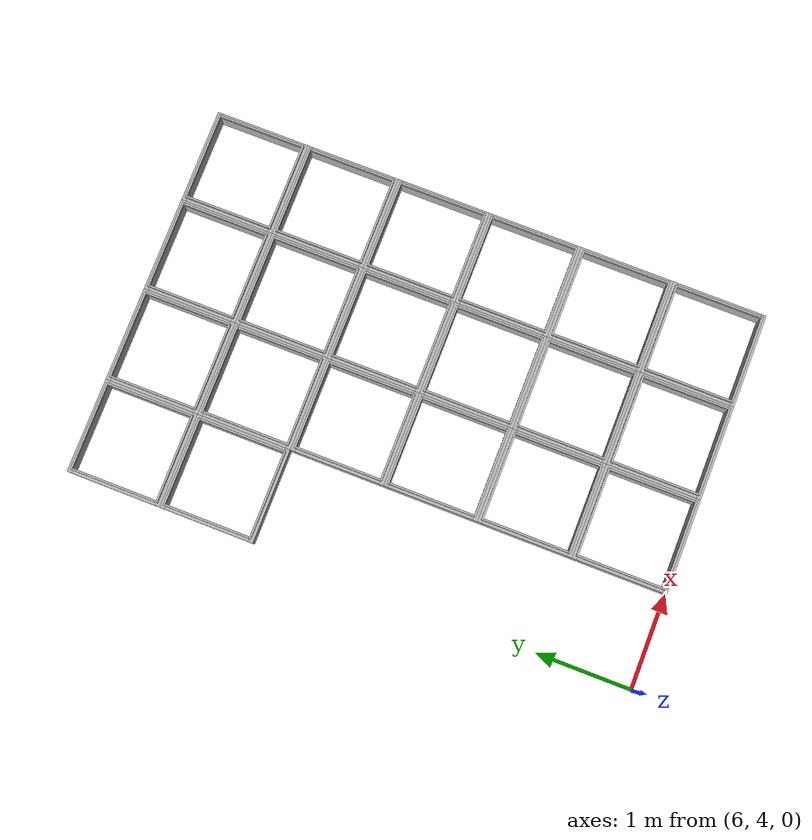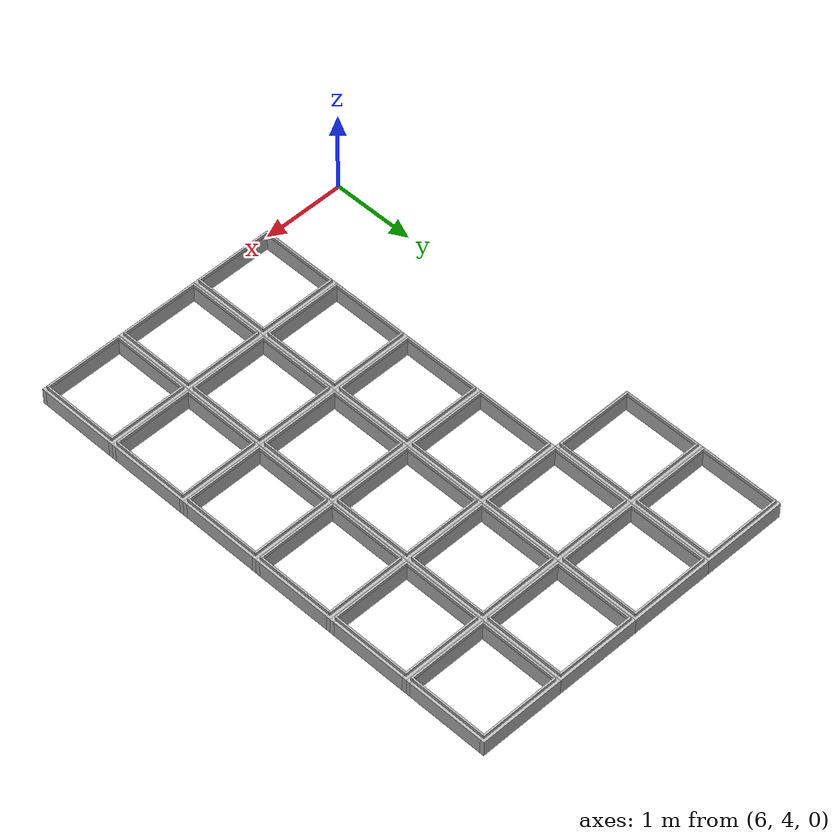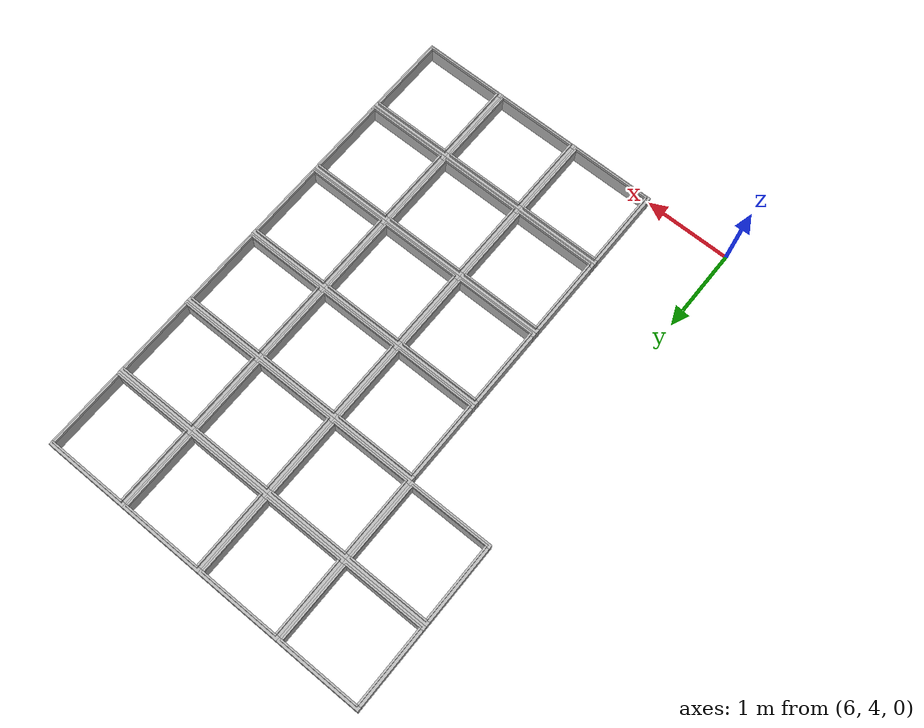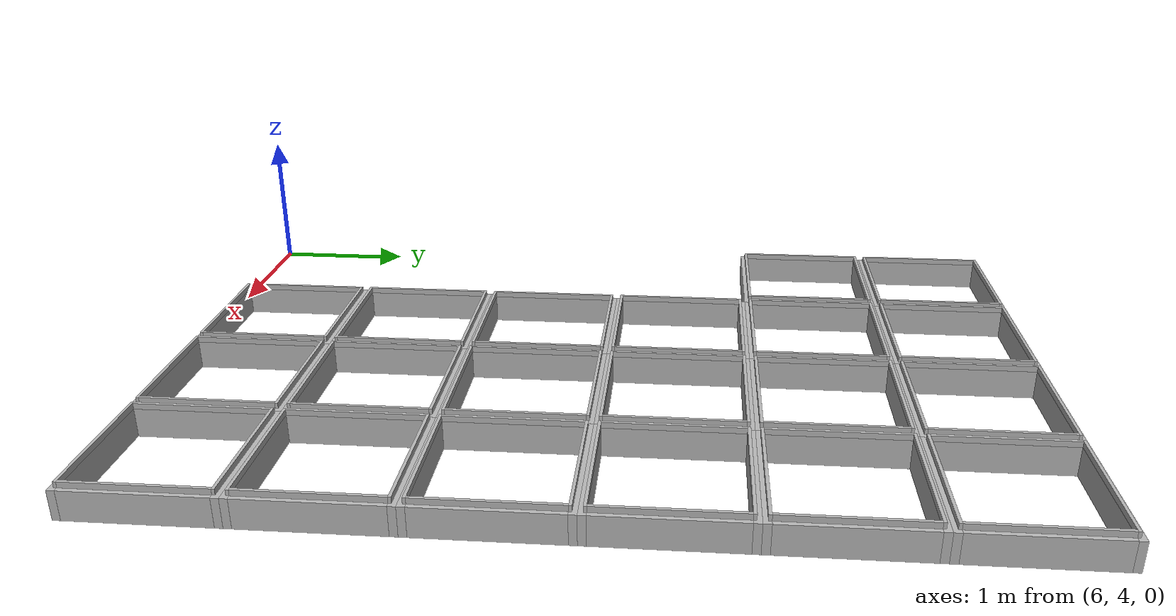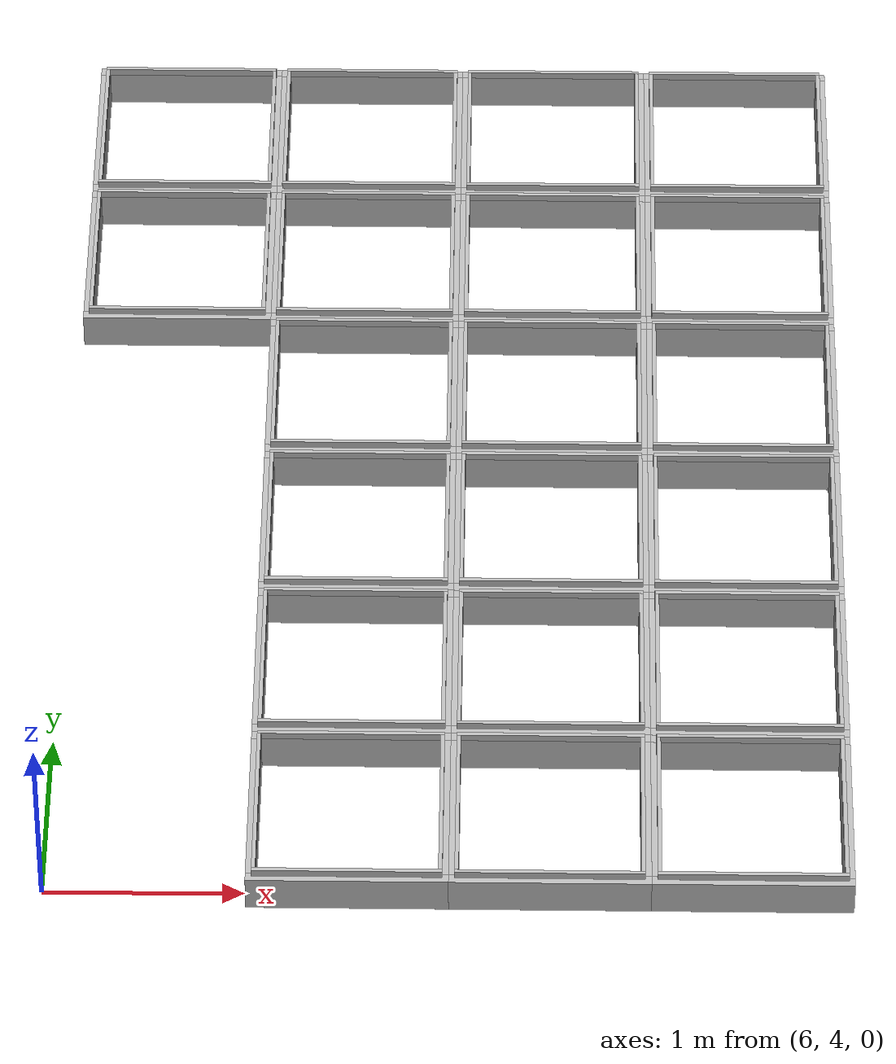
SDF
<sdf version="1.4">
 <model name="Auto Store Frame">
  <static>true</static>
  <link name="cell_68">
   <pose>6.5 8.5 0 0 0 0</pose>
   <collision name="frame_collision_x1">
    <pose>0 -0.475 0 0 0 0</pose>
    <geometry><box><size>1 0.05 0.2 0 0 0</size></box></geometry>
   </collision>
   <collision name="frame_collision_x2">
    <pose>0 0.475 0 0 0 0</pose>
    <geometry><box><size>1 0.05 0.2 0 0 0</size></box></geometry>
   </collision>
   <collision name="frame_collision_y1">
    <pose>-0.475 0 0 0 0 0</pose>
    <geometry><box><size>0.05 0.9 0.2 0 0 0</size></box></geometry>
   </collision>
   <collision name="frame_collision_y2">
    <pose>0.475 0 0 0 0 0</pose>
    <geometry><box><size>0.05 0.9 0.2 0 0 0</size></box></geometry>
   </collision>
   <collision name="guide_collision_x1">
    <pose>0 -0.46 0.12 0 0 0</pose>
    <geometry><box><size>0.94 0.02 0.04 0 0 0</size></box></geometry>
   </collision>
   <collision name="guide_collision_x2">
    <pose>0 0.46 0.12 0 0 0</pose>
    <geometry><box><size>0.94 0.02 0.04 0 0 0</size></box></geometry>
   </collision>
   <collision name="guide_collision_y1">
    <pose>-0.46 0 0.12 0 0 0</pose>
    <geometry><box><size>0.02 0.9 0.04 0 0 0</size></box></geometry>
   </collision>
   <collision name="guide_collision_y2">
    <pose>0.46 0 0.12 0 0 0</pose>
    <geometry><box><size>0.02 0.9 0.04 0 0 0</size></box></geometry>
   </collision>
   <visual name="frame_visual_x1">
    <pose>0 -0.475 0 0 0 0</pose>
    <geometry><box><size>1 0.05 0.2 0 0 0</size></box></geometry>
   </visual>
   <visual name="frame_visual_x2">
    <pose>0 0.475 0 0 0 0</pose>
    <geometry><box><size>1 0.05 0.2 0 0 0</size></box></geometry>
   </visual>
   <visual name="frame_visual_y1">
    <pose>-0.475 0 0 0 0 0</pose>
    <geometry><box><size>0.05 0.9 0.2 0 0 0</size></box></geometry>
   </visual>
   <visual name="frame_visual_y2">
    <pose>0.475 0 0 0 0 0</pose>
    <geometry><box><size>0.05 0.9 0.2 0 0 0</size></box></geometry>
   </visual>
   <visual name="guide_visual_x1">
    <pose>0 -0.46 0.12 0 0 0</pose>
    <geometry><box><size>0.94 0.02 0.04 0 0 0</size></box></geometry>
   </visual>
   <visual name="guide_visual_x2">
    <pose>0 0.46 0.12 0 0 0</pose>
    <geometry><box><size>0.94 0.02 0.04 0 0 0</size></box></geometry>
   </visual>
   <visual name="guide_visual_y1">
    <pose>-0.46 0 0.12 0 0 0</pose>
    <geometry><box><size>0.02 0.9 0.04 0 0 0</size></box></geometry>
   </visual>
   <visual name="guide_visual_y2">
    <pose>0.46 0 0.12 0 0 0</pose>
    <geometry><box><size>0.02 0.9 0.04 0 0 0</size></box></geometry>
   </visual>
  </link>
  <link name="cell_69">
   <pose>6.5 9.5 0 0 0 0</pose>
   <collision name="frame_collision_x1">
    <pose>0 -0.475 0 0 0 0</pose>
    <geometry><box><size>1 0.05 0.2 0 0 0</size></box></geometry>
   </collision>
   <collision name="frame_collision_x2">
    <pose>0 0.475 0 0 0 0</pose>
    <geometry><box><size>1 0.05 0.2 0 0 0</size></box></geometry>
   </collision>
   <collision name="frame_collision_y1">
    <pose>-0.475 0 0 0 0 0</pose>
    <geometry><box><size>0.05 0.9 0.2 0 0 0</size></box></geometry>
   </collision>
   <collision name="frame_collision_y2">
    <pose>0.475 0 0 0 0 0</pose>
    <geometry><box><size>0.05 0.9 0.2 0 0 0</size></box></geometry>
   </collision>
   <collision name="guide_collision_x1">
    <pose>0 -0.46 0.12 0 0 0</pose>
    <geometry><box><size>0.94 0.02 0.04 0 0 0</size></box></geometry>
   </collision>
   <collision name="guide_collision_x2">
    <pose>0 0.46 0.12 0 0 0</pose>
    <geometry><box><size>0.94 0.02 0.04 0 0 0</size></box></geometry>
   </collision>
   <collision name="guide_collision_y1">
    <pose>-0.46 0 0.12 0 0 0</pose>
    <geometry><box><size>0.02 0.9 0.04 0 0 0</size></box></geometry>
   </collision>
   <collision name="guide_collision_y2">
    <pose>0.46 0 0.12 0 0 0</pose>
    <geometry><box><size>0.02 0.9 0.04 0 0 0</size></box></geometry>
   </collision>
   <visual name="frame_visual_x1">
    <pose>0 -0.475 0 0 0 0</pose>
    <geometry><box><size>1 0.05 0.2 0 0 0</size></box></geometry>
   </visual>
   <visual name="frame_visual_x2">
    <pose>0 0.475 0 0 0 0</pose>
    <geometry><box><size>1 0.05 0.2 0 0 0</size></box></geometry>
   </visual>
   <visual name="frame_visual_y1">
    <pose>-0.475 0 0 0 0 0</pose>
    <geometry><box><size>0.05 0.9 0.2 0 0 0</size></box></geometry>
   </visual>
   <visual name="frame_visual_y2">
    <pose>0.475 0 0 0 0 0</pose>
    <geometry><box><size>0.05 0.9 0.2 0 0 0</size></box></geometry>
   </visual>
   <visual name="guide_visual_x1">
    <pose>0 -0.46 0.12 0 0 0</pose>
    <geometry><box><size>0.94 0.02 0.04 0 0 0</size></box></geometry>
   </visual>
   <visual name="guide_visual_x2">
    <pose>0 0.46 0.12 0 0 0</pose>
    <geometry><box><size>0.94 0.02 0.04 0 0 0</size></box></geometry>
   </visual>
   <visual name="guide_visual_y1">
    <pose>-0.46 0 0.12 0 0 0</pose>
    <geometry><box><size>0.02 0.9 0.04 0 0 0</size></box></geometry>
   </visual>
   <visual name="guide_visual_y2">
    <pose>0.46 0 0.12 0 0 0</pose>
    <geometry><box><size>0.02 0.9 0.04 0 0 0</size></box></geometry>
   </visual>
  </link>
  <link name="cell_74">
   <pose>7.5 4.5 0 0 0 0</pose>
   <collision name="frame_collision_x1">
    <pose>0 -0.475 0 0 0 0</pose>
    <geometry><box><size>1 0.05 0.2 0 0 0</size></box></geometry>
   </collision>
   <collision name="frame_collision_x2">
    <pose>0 0.475 0 0 0 0</pose>
    <geometry><box><size>1 0.05 0.2 0 0 0</size></box></geometry>
   </collision>
   <collision name="frame_collision_y1">
    <pose>-0.475 0 0 0 0 0</pose>
    <geometry><box><size>0.05 0.9 0.2 0 0 0</size></box></geometry>
   </collision>
   <collision name="frame_collision_y2">
    <pose>0.475 0 0 0 0 0</pose>
    <geometry><box><size>0.05 0.9 0.2 0 0 0</size></box></geometry>
   </collision>
   <collision name="guide_collision_x1">
    <pose>0 -0.46 0.12 0 0 0</pose>
    <geometry><box><size>0.94 0.02 0.04 0 0 0</size></box></geometry>
   </collision>
   <collision name="guide_collision_x2">
    <pose>0 0.46 0.12 0 0 0</pose>
    <geometry><box><size>0.94 0.02 0.04 0 0 0</size></box></geometry>
   </collision>
   <collision name="guide_collision_y1">
    <pose>-0.46 0 0.12 0 0 0</pose>
    <geometry><box><size>0.02 0.9 0.04 0 0 0</size></box></geometry>
   </collision>
   <collision name="guide_collision_y2">
    <pose>0.46 0 0.12 0 0 0</pose>
    <geometry><box><size>0.02 0.9 0.04 0 0 0</size></box></geometry>
   </collision>
   <visual name="frame_visual_x1">
    <pose>0 -0.475 0 0 0 0</pose>
    <geometry><box><size>1 0.05 0.2 0 0 0</size></box></geometry>
   </visual>
   <visual name="frame_visual_x2">
    <pose>0 0.475 0 0 0 0</pose>
    <geometry><box><size>1 0.05 0.2 0 0 0</size></box></geometry>
   </visual>
   <visual name="frame_visual_y1">
    <pose>-0.475 0 0 0 0 0</pose>
    <geometry><box><size>0.05 0.9 0.2 0 0 0</size></box></geometry>
   </visual>
   <visual name="frame_visual_y2">
    <pose>0.475 0 0 0 0 0</pose>
    <geometry><box><size>0.05 0.9 0.2 0 0 0</size></box></geometry>
   </visual>
   <visual name="guide_visual_x1">
    <pose>0 -0.46 0.12 0 0 0</pose>
    <geometry><box><size>0.94 0.02 0.04 0 0 0</size></box></geometry>
   </visual>
   <visual name="guide_visual_x2">
    <pose>0 0.46 0.12 0 0 0</pose>
    <geometry><box><size>0.94 0.02 0.04 0 0 0</size></box></geometry>
   </visual>
   <visual name="guide_visual_y1">
    <pose>-0.46 0 0.12 0 0 0</pose>
    <geometry><box><size>0.02 0.9 0.04 0 0 0</size></box></geometry>
   </visual>
   <visual name="guide_visual_y2">
    <pose>0.46 0 0.12 0 0 0</pose>
    <geometry><box><size>0.02 0.9 0.04 0 0 0</size></box></geometry>
   </visual>
  </link>
  <link name="cell_75">
   <pose>7.5 5.5 0 0 0 0</pose>
   <collision name="frame_collision_x1">
    <pose>0 -0.475 0 0 0 0</pose>
    <geometry><box><size>1 0.05 0.2 0 0 0</size></box></geometry>
   </collision>
   <collision name="frame_collision_x2">
    <pose>0 0.475 0 0 0 0</pose>
    <geometry><box><size>1 0.05 0.2 0 0 0</size></box></geometry>
   </collision>
   <collision name="frame_collision_y1">
    <pose>-0.475 0 0 0 0 0</pose>
    <geometry><box><size>0.05 0.9 0.2 0 0 0</size></box></geometry>
   </collision>
   <collision name="frame_collision_y2">
    <pose>0.475 0 0 0 0 0</pose>
    <geometry><box><size>0.05 0.9 0.2 0 0 0</size></box></geometry>
   </collision>
   <collision name="guide_collision_x1">
    <pose>0 -0.46 0.12 0 0 0</pose>
    <geometry><box><size>0.94 0.02 0.04 0 0 0</size></box></geometry>
   </collision>
   <collision name="guide_collision_x2">
    <pose>0 0.46 0.12 0 0 0</pose>
    <geometry><box><size>0.94 0.02 0.04 0 0 0</size></box></geometry>
   </collision>
   <collision name="guide_collision_y1">
    <pose>-0.46 0 0.12 0 0 0</pose>
    <geometry><box><size>0.02 0.9 0.04 0 0 0</size></box></geometry>
   </collision>
   <collision name="guide_collision_y2">
    <pose>0.46 0 0.12 0 0 0</pose>
    <geometry><box><size>0.02 0.9 0.04 0 0 0</size></box></geometry>
   </collision>
   <visual name="frame_visual_x1">
    <pose>0 -0.475 0 0 0 0</pose>
    <geometry><box><size>1 0.05 0.2 0 0 0</size></box></geometry>
   </visual>
   <visual name="frame_visual_x2">
    <pose>0 0.475 0 0 0 0</pose>
    <geometry><box><size>1 0.05 0.2 0 0 0</size></box></geometry>
   </visual>
   <visual name="frame_visual_y1">
    <pose>-0.475 0 0 0 0 0</pose>
    <geometry><box><size>0.05 0.9 0.2 0 0 0</size></box></geometry>
   </visual>
   <visual name="frame_visual_y2">
    <pose>0.475 0 0 0 0 0</pose>
    <geometry><box><size>0.05 0.9 0.2 0 0 0</size></box></geometry>
   </visual>
   <visual name="guide_visual_x1">
    <pose>0 -0.46 0.12 0 0 0</pose>
    <geometry><box><size>0.94 0.02 0.04 0 0 0</size></box></geometry>
   </visual>
   <visual name="guide_visual_x2">
    <pose>0 0.46 0.12 0 0 0</pose>
    <geometry><box><size>0.94 0.02 0.04 0 0 0</size></box></geometry>
   </visual>
   <visual name="guide_visual_y1">
    <pose>-0.46 0 0.12 0 0 0</pose>
    <geometry><box><size>0.02 0.9 0.04 0 0 0</size></box></geometry>
   </visual>
   <visual name="guide_visual_y2">
    <pose>0.46 0 0.12 0 0 0</pose>
    <geometry><box><size>0.02 0.9 0.04 0 0 0</size></box></geometry>
   </visual>
  </link>
  <link name="cell_76">
   <pose>7.5 6.5 0 0 0 0</pose>
   <collision name="frame_collision_x1">
    <pose>0 -0.475 0 0 0 0</pose>
    <geometry><box><size>1 0.05 0.2 0 0 0</size></box></geometry>
   </collision>
   <collision name="frame_collision_x2">
    <pose>0 0.475 0 0 0 0</pose>
    <geometry><box><size>1 0.05 0.2 0 0 0</size></box></geometry>
   </collision>
   <collision name="frame_collision_y1">
    <pose>-0.475 0 0 0 0 0</pose>
    <geometry><box><size>0.05 0.9 0.2 0 0 0</size></box></geometry>
   </collision>
   <collision name="frame_collision_y2">
    <pose>0.475 0 0 0 0 0</pose>
    <geometry><box><size>0.05 0.9 0.2 0 0 0</size></box></geometry>
   </collision>
   <collision name="guide_collision_x1">
    <pose>0 -0.46 0.12 0 0 0</pose>
    <geometry><box><size>0.94 0.02 0.04 0 0 0</size></box></geometry>
   </collision>
   <collision name="guide_collision_x2">
    <pose>0 0.46 0.12 0 0 0</pose>
    <geometry><box><size>0.94 0.02 0.04 0 0 0</size></box></geometry>
   </collision>
   <collision name="guide_collision_y1">
    <pose>-0.46 0 0.12 0 0 0</pose>
    <geometry><box><size>0.02 0.9 0.04 0 0 0</size></box></geometry>
   </collision>
   <collision name="guide_collision_y2">
    <pose>0.46 0 0.12 0 0 0</pose>
    <geometry><box><size>0.02 0.9 0.04 0 0 0</size></box></geometry>
   </collision>
   <visual name="frame_visual_x1">
    <pose>0 -0.475 0 0 0 0</pose>
    <geometry><box><size>1 0.05 0.2 0 0 0</size></box></geometry>
   </visual>
   <visual name="frame_visual_x2">
    <pose>0 0.475 0 0 0 0</pose>
    <geometry><box><size>1 0.05 0.2 0 0 0</size></box></geometry>
   </visual>
   <visual name="frame_visual_y1">
    <pose>-0.475 0 0 0 0 0</pose>
    <geometry><box><size>0.05 0.9 0.2 0 0 0</size></box></geometry>
   </visual>
   <visual name="frame_visual_y2">
    <pose>0.475 0 0 0 0 0</pose>
    <geometry><box><size>0.05 0.9 0.2 0 0 0</size></box></geometry>
   </visual>
   <visual name="guide_visual_x1">
    <pose>0 -0.46 0.12 0 0 0</pose>
    <geometry><box><size>0.94 0.02 0.04 0 0 0</size></box></geometry>
   </visual>
   <visual name="guide_visual_x2">
    <pose>0 0.46 0.12 0 0 0</pose>
    <geometry><box><size>0.94 0.02 0.04 0 0 0</size></box></geometry>
   </visual>
   <visual name="guide_visual_y1">
    <pose>-0.46 0 0.12 0 0 0</pose>
    <geometry><box><size>0.02 0.9 0.04 0 0 0</size></box></geometry>
   </visual>
   <visual name="guide_visual_y2">
    <pose>0.46 0 0.12 0 0 0</pose>
    <geometry><box><size>0.02 0.9 0.04 0 0 0</size></box></geometry>
   </visual>
  </link>
  <link name="cell_77">
   <pose>7.5 7.5 0 0 0 0</pose>
   <collision name="frame_collision_x1">
    <pose>0 -0.475 0 0 0 0</pose>
    <geometry><box><size>1 0.05 0.2 0 0 0</size></box></geometry>
   </collision>
   <collision name="frame_collision_x2">
    <pose>0 0.475 0 0 0 0</pose>
    <geometry><box><size>1 0.05 0.2 0 0 0</size></box></geometry>
   </collision>
   <collision name="frame_collision_y1">
    <pose>-0.475 0 0 0 0 0</pose>
    <geometry><box><size>0.05 0.9 0.2 0 0 0</size></box></geometry>
   </collision>
   <collision name="frame_collision_y2">
    <pose>0.475 0 0 0 0 0</pose>
    <geometry><box><size>0.05 0.9 0.2 0 0 0</size></box></geometry>
   </collision>
   <collision name="guide_collision_x1">
    <pose>0 -0.46 0.12 0 0 0</pose>
    <geometry><box><size>0.94 0.02 0.04 0 0 0</size></box></geometry>
   </collision>
   <collision name="guide_collision_x2">
    <pose>0 0.46 0.12 0 0 0</pose>
    <geometry><box><size>0.94 0.02 0.04 0 0 0</size></box></geometry>
   </collision>
   <collision name="guide_collision_y1">
    <pose>-0.46 0 0.12 0 0 0</pose>
    <geometry><box><size>0.02 0.9 0.04 0 0 0</size></box></geometry>
   </collision>
   <collision name="guide_collision_y2">
    <pose>0.46 0 0.12 0 0 0</pose>
    <geometry><box><size>0.02 0.9 0.04 0 0 0</size></box></geometry>
   </collision>
   <visual name="frame_visual_x1">
    <pose>0 -0.475 0 0 0 0</pose>
    <geometry><box><size>1 0.05 0.2 0 0 0</size></box></geometry>
   </visual>
   <visual name="frame_visual_x2">
    <pose>0 0.475 0 0 0 0</pose>
    <geometry><box><size>1 0.05 0.2 0 0 0</size></box></geometry>
   </visual>
   <visual name="frame_visual_y1">
    <pose>-0.475 0 0 0 0 0</pose>
    <geometry><box><size>0.05 0.9 0.2 0 0 0</size></box></geometry>
   </visual>
   <visual name="frame_visual_y2">
    <pose>0.475 0 0 0 0 0</pose>
    <geometry><box><size>0.05 0.9 0.2 0 0 0</size></box></geometry>
   </visual>
   <visual name="guide_visual_x1">
    <pose>0 -0.46 0.12 0 0 0</pose>
    <geometry><box><size>0.94 0.02 0.04 0 0 0</size></box></geometry>
   </visual>
   <visual name="guide_visual_x2">
    <pose>0 0.46 0.12 0 0 0</pose>
    <geometry><box><size>0.94 0.02 0.04 0 0 0</size></box></geometry>
   </visual>
   <visual name="guide_visual_y1">
    <pose>-0.46 0 0.12 0 0 0</pose>
    <geometry><box><size>0.02 0.9 0.04 0 0 0</size></box></geometry>
   </visual>
   <visual name="guide_visual_y2">
    <pose>0.46 0 0.12 0 0 0</pose>
    <geometry><box><size>0.02 0.9 0.04 0 0 0</size></box></geometry>
   </visual>
  </link>
  <link name="cell_78">
   <pose>7.5 8.5 0 0 0 0</pose>
   <collision name="frame_collision_x1">
    <pose>0 -0.475 0 0 0 0</pose>
    <geometry><box><size>1 0.05 0.2 0 0 0</size></box></geometry>
   </collision>
   <collision name="frame_collision_x2">
    <pose>0 0.475 0 0 0 0</pose>
    <geometry><box><size>1 0.05 0.2 0 0 0</size></box></geometry>
   </collision>
   <collision name="frame_collision_y1">
    <pose>-0.475 0 0 0 0 0</pose>
    <geometry><box><size>0.05 0.9 0.2 0 0 0</size></box></geometry>
   </collision>
   <collision name="frame_collision_y2">
    <pose>0.475 0 0 0 0 0</pose>
    <geometry><box><size>0.05 0.9 0.2 0 0 0</size></box></geometry>
   </collision>
   <collision name="guide_collision_x1">
    <pose>0 -0.46 0.12 0 0 0</pose>
    <geometry><box><size>0.94 0.02 0.04 0 0 0</size></box></geometry>
   </collision>
   <collision name="guide_collision_x2">
    <pose>0 0.46 0.12 0 0 0</pose>
    <geometry><box><size>0.94 0.02 0.04 0 0 0</size></box></geometry>
   </collision>
   <collision name="guide_collision_y1">
    <pose>-0.46 0 0.12 0 0 0</pose>
    <geometry><box><size>0.02 0.9 0.04 0 0 0</size></box></geometry>
   </collision>
   <collision name="guide_collision_y2">
    <pose>0.46 0 0.12 0 0 0</pose>
    <geometry><box><size>0.02 0.9 0.04 0 0 0</size></box></geometry>
   </collision>
   <visual name="frame_visual_x1">
    <pose>0 -0.475 0 0 0 0</pose>
    <geometry><box><size>1 0.05 0.2 0 0 0</size></box></geometry>
   </visual>
   <visual name="frame_visual_x2">
    <pose>0 0.475 0 0 0 0</pose>
    <geometry><box><size>1 0.05 0.2 0 0 0</size></box></geometry>
   </visual>
   <visual name="frame_visual_y1">
    <pose>-0.475 0 0 0 0 0</pose>
    <geometry><box><size>0.05 0.9 0.2 0 0 0</size></box></geometry>
   </visual>
   <visual name="frame_visual_y2">
    <pose>0.475 0 0 0 0 0</pose>
    <geometry><box><size>0.05 0.9 0.2 0 0 0</size></box></geometry>
   </visual>
   <visual name="guide_visual_x1">
    <pose>0 -0.46 0.12 0 0 0</pose>
    <geometry><box><size>0.94 0.02 0.04 0 0 0</size></box></geometry>
   </visual>
   <visual name="guide_visual_x2">
    <pose>0 0.46 0.12 0 0 0</pose>
    <geometry><box><size>0.94 0.02 0.04 0 0 0</size></box></geometry>
   </visual>
   <visual name="guide_visual_y1">
    <pose>-0.46 0 0.12 0 0 0</pose>
    <geometry><box><size>0.02 0.9 0.04 0 0 0</size></box></geometry>
   </visual>
   <visual name="guide_visual_y2">
    <pose>0.46 0 0.12 0 0 0</pose>
    <geometry><box><size>0.02 0.9 0.04 0 0 0</size></box></geometry>
   </visual>
  </link>
  <link name="cell_79">
   <pose>7.5 9.5 0 0 0 0</pose>
   <collision name="frame_collision_x1">
    <pose>0 -0.475 0 0 0 0</pose>
    <geometry><box><size>1 0.05 0.2 0 0 0</size></box></geometry>
   </collision>
   <collision name="frame_collision_x2">
    <pose>0 0.475 0 0 0 0</pose>
    <geometry><box><size>1 0.05 0.2 0 0 0</size></box></geometry>
   </collision>
   <collision name="frame_collision_y1">
    <pose>-0.475 0 0 0 0 0</pose>
    <geometry><box><size>0.05 0.9 0.2 0 0 0</size></box></geometry>
   </collision>
   <collision name="frame_collision_y2">
    <pose>0.475 0 0 0 0 0</pose>
    <geometry><box><size>0.05 0.9 0.2 0 0 0</size></box></geometry>
   </collision>
   <collision name="guide_collision_x1">
    <pose>0 -0.46 0.12 0 0 0</pose>
    <geometry><box><size>0.94 0.02 0.04 0 0 0</size></box></geometry>
   </collision>
   <collision name="guide_collision_x2">
    <pose>0 0.46 0.12 0 0 0</pose>
    <geometry><box><size>0.94 0.02 0.04 0 0 0</size></box></geometry>
   </collision>
   <collision name="guide_collision_y1">
    <pose>-0.46 0 0.12 0 0 0</pose>
    <geometry><box><size>0.02 0.9 0.04 0 0 0</size></box></geometry>
   </collision>
   <collision name="guide_collision_y2">
    <pose>0.46 0 0.12 0 0 0</pose>
    <geometry><box><size>0.02 0.9 0.04 0 0 0</size></box></geometry>
   </collision>
   <visual name="frame_visual_x1">
    <pose>0 -0.475 0 0 0 0</pose>
    <geometry><box><size>1 0.05 0.2 0 0 0</size></box></geometry>
   </visual>
   <visual name="frame_visual_x2">
    <pose>0 0.475 0 0 0 0</pose>
    <geometry><box><size>1 0.05 0.2 0 0 0</size></box></geometry>
   </visual>
   <visual name="frame_visual_y1">
    <pose>-0.475 0 0 0 0 0</pose>
    <geometry><box><size>0.05 0.9 0.2 0 0 0</size></box></geometry>
   </visual>
   <visual name="frame_visual_y2">
    <pose>0.475 0 0 0 0 0</pose>
    <geometry><box><size>0.05 0.9 0.2 0 0 0</size></box></geometry>
   </visual>
   <visual name="guide_visual_x1">
    <pose>0 -0.46 0.12 0 0 0</pose>
    <geometry><box><size>0.94 0.02 0.04 0 0 0</size></box></geometry>
   </visual>
   <visual name="guide_visual_x2">
    <pose>0 0.46 0.12 0 0 0</pose>
    <geometry><box><size>0.94 0.02 0.04 0 0 0</size></box></geometry>
   </visual>
   <visual name="guide_visual_y1">
    <pose>-0.46 0 0.12 0 0 0</pose>
    <geometry><box><size>0.02 0.9 0.04 0 0 0</size></box></geometry>
   </visual>
   <visual name="guide_visual_y2">
    <pose>0.46 0 0.12 0 0 0</pose>
    <geometry><box><size>0.02 0.9 0.04 0 0 0</size></box></geometry>
   </visual>
  </link>
  <link name="cell_84">
   <pose>8.5 4.5 0 0 0 0</pose>
   <collision name="frame_collision_x1">
    <pose>0 -0.475 0 0 0 0</pose>
    <geometry><box><size>1 0.05 0.2 0 0 0</size></box></geometry>
   </collision>
   <collision name="frame_collision_x2">
    <pose>0 0.475 0 0 0 0</pose>
    <geometry><box><size>1 0.05 0.2 0 0 0</size></box></geometry>
   </collision>
   <collision name="frame_collision_y1">
    <pose>-0.475 0 0 0 0 0</pose>
    <geometry><box><size>0.05 0.9 0.2 0 0 0</size></box></geometry>
   </collision>
   <collision name="frame_collision_y2">
    <pose>0.475 0 0 0 0 0</pose>
    <geometry><box><size>0.05 0.9 0.2 0 0 0</size></box></geometry>
   </collision>
   <collision name="guide_collision_x1">
    <pose>0 -0.46 0.12 0 0 0</pose>
    <geometry><box><size>0.94 0.02 0.04 0 0 0</size></box></geometry>
   </collision>
   <collision name="guide_collision_x2">
    <pose>0 0.46 0.12 0 0 0</pose>
    <geometry><box><size>0.94 0.02 0.04 0 0 0</size></box></geometry>
   </collision>
   <collision name="guide_collision_y1">
    <pose>-0.46 0 0.12 0 0 0</pose>
    <geometry><box><size>0.02 0.9 0.04 0 0 0</size></box></geometry>
   </collision>
   <collision name="guide_collision_y2">
    <pose>0.46 0 0.12 0 0 0</pose>
    <geometry><box><size>0.02 0.9 0.04 0 0 0</size></box></geometry>
   </collision>
   <visual name="frame_visual_x1">
    <pose>0 -0.475 0 0 0 0</pose>
    <geometry><box><size>1 0.05 0.2 0 0 0</size></box></geometry>
   </visual>
   <visual name="frame_visual_x2">
    <pose>0 0.475 0 0 0 0</pose>
    <geometry><box><size>1 0.05 0.2 0 0 0</size></box></geometry>
   </visual>
   <visual name="frame_visual_y1">
    <pose>-0.475 0 0 0 0 0</pose>
    <geometry><box><size>0.05 0.9 0.2 0 0 0</size></box></geometry>
   </visual>
   <visual name="frame_visual_y2">
    <pose>0.475 0 0 0 0 0</pose>
    <geometry><box><size>0.05 0.9 0.2 0 0 0</size></box></geometry>
   </visual>
   <visual name="guide_visual_x1">
    <pose>0 -0.46 0.12 0 0 0</pose>
    <geometry><box><size>0.94 0.02 0.04 0 0 0</size></box></geometry>
   </visual>
   <visual name="guide_visual_x2">
    <pose>0 0.46 0.12 0 0 0</pose>
    <geometry><box><size>0.94 0.02 0.04 0 0 0</size></box></geometry>
   </visual>
   <visual name="guide_visual_y1">
    <pose>-0.46 0 0.12 0 0 0</pose>
    <geometry><box><size>0.02 0.9 0.04 0 0 0</size></box></geometry>
   </visual>
   <visual name="guide_visual_y2">
    <pose>0.46 0 0.12 0 0 0</pose>
    <geometry><box><size>0.02 0.9 0.04 0 0 0</size></box></geometry>
   </visual>
  </link>
  <link name="cell_85">
   <pose>8.5 5.5 0 0 0 0</pose>
   <collision name="frame_collision_x1">
    <pose>0 -0.475 0 0 0 0</pose>
    <geometry><box><size>1 0.05 0.2 0 0 0</size></box></geometry>
   </collision>
   <collision name="frame_collision_x2">
    <pose>0 0.475 0 0 0 0</pose>
    <geometry><box><size>1 0.05 0.2 0 0 0</size></box></geometry>
   </collision>
   <collision name="frame_collision_y1">
    <pose>-0.475 0 0 0 0 0</pose>
    <geometry><box><size>0.05 0.9 0.2 0 0 0</size></box></geometry>
   </collision>
   <collision name="frame_collision_y2">
    <pose>0.475 0 0 0 0 0</pose>
    <geometry><box><size>0.05 0.9 0.2 0 0 0</size></box></geometry>
   </collision>
   <collision name="guide_collision_x1">
    <pose>0 -0.46 0.12 0 0 0</pose>
    <geometry><box><size>0.94 0.02 0.04 0 0 0</size></box></geometry>
   </collision>
   <collision name="guide_collision_x2">
    <pose>0 0.46 0.12 0 0 0</pose>
    <geometry><box><size>0.94 0.02 0.04 0 0 0</size></box></geometry>
   </collision>
   <collision name="guide_collision_y1">
    <pose>-0.46 0 0.12 0 0 0</pose>
    <geometry><box><size>0.02 0.9 0.04 0 0 0</size></box></geometry>
   </collision>
   <collision name="guide_collision_y2">
    <pose>0.46 0 0.12 0 0 0</pose>
    <geometry><box><size>0.02 0.9 0.04 0 0 0</size></box></geometry>
   </collision>
   <visual name="frame_visual_x1">
    <pose>0 -0.475 0 0 0 0</pose>
    <geometry><box><size>1 0.05 0.2 0 0 0</size></box></geometry>
   </visual>
   <visual name="frame_visual_x2">
    <pose>0 0.475 0 0 0 0</pose>
    <geometry><box><size>1 0.05 0.2 0 0 0</size></box></geometry>
   </visual>
   <visual name="frame_visual_y1">
    <pose>-0.475 0 0 0 0 0</pose>
    <geometry><box><size>0.05 0.9 0.2 0 0 0</size></box></geometry>
   </visual>
   <visual name="frame_visual_y2">
    <pose>0.475 0 0 0 0 0</pose>
    <geometry><box><size>0.05 0.9 0.2 0 0 0</size></box></geometry>
   </visual>
   <visual name="guide_visual_x1">
    <pose>0 -0.46 0.12 0 0 0</pose>
    <geometry><box><size>0.94 0.02 0.04 0 0 0</size></box></geometry>
   </visual>
   <visual name="guide_visual_x2">
    <pose>0 0.46 0.12 0 0 0</pose>
    <geometry><box><size>0.94 0.02 0.04 0 0 0</size></box></geometry>
   </visual>
   <visual name="guide_visual_y1">
    <pose>-0.46 0 0.12 0 0 0</pose>
    <geometry><box><size>0.02 0.9 0.04 0 0 0</size></box></geometry>
   </visual>
   <visual name="guide_visual_y2">
    <pose>0.46 0 0.12 0 0 0</pose>
    <geometry><box><size>0.02 0.9 0.04 0 0 0</size></box></geometry>
   </visual>
  </link>
  <link name="cell_86">
   <pose>8.5 6.5 0 0 0 0</pose>
   <collision name="frame_collision_x1">
    <pose>0 -0.475 0 0 0 0</pose>
    <geometry><box><size>1 0.05 0.2 0 0 0</size></box></geometry>
   </collision>
   <collision name="frame_collision_x2">
    <pose>0 0.475 0 0 0 0</pose>
    <geometry><box><size>1 0.05 0.2 0 0 0</size></box></geometry>
   </collision>
   <collision name="frame_collision_y1">
    <pose>-0.475 0 0 0 0 0</pose>
    <geometry><box><size>0.05 0.9 0.2 0 0 0</size></box></geometry>
   </collision>
   <collision name="frame_collision_y2">
    <pose>0.475 0 0 0 0 0</pose>
    <geometry><box><size>0.05 0.9 0.2 0 0 0</size></box></geometry>
   </collision>
   <collision name="guide_collision_x1">
    <pose>0 -0.46 0.12 0 0 0</pose>
    <geometry><box><size>0.94 0.02 0.04 0 0 0</size></box></geometry>
   </collision>
   <collision name="guide_collision_x2">
    <pose>0 0.46 0.12 0 0 0</pose>
    <geometry><box><size>0.94 0.02 0.04 0 0 0</size></box></geometry>
   </collision>
   <collision name="guide_collision_y1">
    <pose>-0.46 0 0.12 0 0 0</pose>
    <geometry><box><size>0.02 0.9 0.04 0 0 0</size></box></geometry>
   </collision>
   <collision name="guide_collision_y2">
    <pose>0.46 0 0.12 0 0 0</pose>
    <geometry><box><size>0.02 0.9 0.04 0 0 0</size></box></geometry>
   </collision>
   <visual name="frame_visual_x1">
    <pose>0 -0.475 0 0 0 0</pose>
    <geometry><box><size>1 0.05 0.2 0 0 0</size></box></geometry>
   </visual>
   <visual name="frame_visual_x2">
    <pose>0 0.475 0 0 0 0</pose>
    <geometry><box><size>1 0.05 0.2 0 0 0</size></box></geometry>
   </visual>
   <visual name="frame_visual_y1">
    <pose>-0.475 0 0 0 0 0</pose>
    <geometry><box><size>0.05 0.9 0.2 0 0 0</size></box></geometry>
   </visual>
   <visual name="frame_visual_y2">
    <pose>0.475 0 0 0 0 0</pose>
    <geometry><box><size>0.05 0.9 0.2 0 0 0</size></box></geometry>
   </visual>
   <visual name="guide_visual_x1">
    <pose>0 -0.46 0.12 0 0 0</pose>
    <geometry><box><size>0.94 0.02 0.04 0 0 0</size></box></geometry>
   </visual>
   <visual name="guide_visual_x2">
    <pose>0 0.46 0.12 0 0 0</pose>
    <geometry><box><size>0.94 0.02 0.04 0 0 0</size></box></geometry>
   </visual>
   <visual name="guide_visual_y1">
    <pose>-0.46 0 0.12 0 0 0</pose>
    <geometry><box><size>0.02 0.9 0.04 0 0 0</size></box></geometry>
   </visual>
   <visual name="guide_visual_y2">
    <pose>0.46 0 0.12 0 0 0</pose>
    <geometry><box><size>0.02 0.9 0.04 0 0 0</size></box></geometry>
   </visual>
  </link>
  <link name="cell_87">
   <pose>8.5 7.5 0 0 0 0</pose>
   <collision name="frame_collision_x1">
    <pose>0 -0.475 0 0 0 0</pose>
    <geometry><box><size>1 0.05 0.2 0 0 0</size></box></geometry>
   </collision>
   <collision name="frame_collision_x2">
    <pose>0 0.475 0 0 0 0</pose>
    <geometry><box><size>1 0.05 0.2 0 0 0</size></box></geometry>
   </collision>
   <collision name="frame_collision_y1">
    <pose>-0.475 0 0 0 0 0</pose>
    <geometry><box><size>0.05 0.9 0.2 0 0 0</size></box></geometry>
   </collision>
   <collision name="frame_collision_y2">
    <pose>0.475 0 0 0 0 0</pose>
    <geometry><box><size>0.05 0.9 0.2 0 0 0</size></box></geometry>
   </collision>
   <collision name="guide_collision_x1">
    <pose>0 -0.46 0.12 0 0 0</pose>
    <geometry><box><size>0.94 0.02 0.04 0 0 0</size></box></geometry>
   </collision>
   <collision name="guide_collision_x2">
    <pose>0 0.46 0.12 0 0 0</pose>
    <geometry><box><size>0.94 0.02 0.04 0 0 0</size></box></geometry>
   </collision>
   <collision name="guide_collision_y1">
    <pose>-0.46 0 0.12 0 0 0</pose>
    <geometry><box><size>0.02 0.9 0.04 0 0 0</size></box></geometry>
   </collision>
   <collision name="guide_collision_y2">
    <pose>0.46 0 0.12 0 0 0</pose>
    <geometry><box><size>0.02 0.9 0.04 0 0 0</size></box></geometry>
   </collision>
   <visual name="frame_visual_x1">
    <pose>0 -0.475 0 0 0 0</pose>
    <geometry><box><size>1 0.05 0.2 0 0 0</size></box></geometry>
   </visual>
   <visual name="frame_visual_x2">
    <pose>0 0.475 0 0 0 0</pose>
    <geometry><box><size>1 0.05 0.2 0 0 0</size></box></geometry>
   </visual>
   <visual name="frame_visual_y1">
    <pose>-0.475 0 0 0 0 0</pose>
    <geometry><box><size>0.05 0.9 0.2 0 0 0</size></box></geometry>
   </visual>
   <visual name="frame_visual_y2">
    <pose>0.475 0 0 0 0 0</pose>
    <geometry><box><size>0.05 0.9 0.2 0 0 0</size></box></geometry>
   </visual>
   <visual name="guide_visual_x1">
    <pose>0 -0.46 0.12 0 0 0</pose>
    <geometry><box><size>0.94 0.02 0.04 0 0 0</size></box></geometry>
   </visual>
   <visual name="guide_visual_x2">
    <pose>0 0.46 0.12 0 0 0</pose>
    <geometry><box><size>0.94 0.02 0.04 0 0 0</size></box></geometry>
   </visual>
   <visual name="guide_visual_y1">
    <pose>-0.46 0 0.12 0 0 0</pose>
    <geometry><box><size>0.02 0.9 0.04 0 0 0</size></box></geometry>
   </visual>
   <visual name="guide_visual_y2">
    <pose>0.46 0 0.12 0 0 0</pose>
    <geometry><box><size>0.02 0.9 0.04 0 0 0</size></box></geometry>
   </visual>
  </link>
  <link name="cell_88">
   <pose>8.5 8.5 0 0 0 0</pose>
   <collision name="frame_collision_x1">
    <pose>0 -0.475 0 0 0 0</pose>
    <geometry><box><size>1 0.05 0.2 0 0 0</size></box></geometry>
   </collision>
   <collision name="frame_collision_x2">
    <pose>0 0.475 0 0 0 0</pose>
    <geometry><box><size>1 0.05 0.2 0 0 0</size></box></geometry>
   </collision>
   <collision name="frame_collision_y1">
    <pose>-0.475 0 0 0 0 0</pose>
    <geometry><box><size>0.05 0.9 0.2 0 0 0</size></box></geometry>
   </collision>
   <collision name="frame_collision_y2">
    <pose>0.475 0 0 0 0 0</pose>
    <geometry><box><size>0.05 0.9 0.2 0 0 0</size></box></geometry>
   </collision>
   <collision name="guide_collision_x1">
    <pose>0 -0.46 0.12 0 0 0</pose>
    <geometry><box><size>0.94 0.02 0.04 0 0 0</size></box></geometry>
   </collision>
   <collision name="guide_collision_x2">
    <pose>0 0.46 0.12 0 0 0</pose>
    <geometry><box><size>0.94 0.02 0.04 0 0 0</size></box></geometry>
   </collision>
   <collision name="guide_collision_y1">
    <pose>-0.46 0 0.12 0 0 0</pose>
    <geometry><box><size>0.02 0.9 0.04 0 0 0</size></box></geometry>
   </collision>
   <collision name="guide_collision_y2">
    <pose>0.46 0 0.12 0 0 0</pose>
    <geometry><box><size>0.02 0.9 0.04 0 0 0</size></box></geometry>
   </collision>
   <visual name="frame_visual_x1">
    <pose>0 -0.475 0 0 0 0</pose>
    <geometry><box><size>1 0.05 0.2 0 0 0</size></box></geometry>
   </visual>
   <visual name="frame_visual_x2">
    <pose>0 0.475 0 0 0 0</pose>
    <geometry><box><size>1 0.05 0.2 0 0 0</size></box></geometry>
   </visual>
   <visual name="frame_visual_y1">
    <pose>-0.475 0 0 0 0 0</pose>
    <geometry><box><size>0.05 0.9 0.2 0 0 0</size></box></geometry>
   </visual>
   <visual name="frame_visual_y2">
    <pose>0.475 0 0 0 0 0</pose>
    <geometry><box><size>0.05 0.9 0.2 0 0 0</size></box></geometry>
   </visual>
   <visual name="guide_visual_x1">
    <pose>0 -0.46 0.12 0 0 0</pose>
    <geometry><box><size>0.94 0.02 0.04 0 0 0</size></box></geometry>
   </visual>
   <visual name="guide_visual_x2">
    <pose>0 0.46 0.12 0 0 0</pose>
    <geometry><box><size>0.94 0.02 0.04 0 0 0</size></box></geometry>
   </visual>
   <visual name="guide_visual_y1">
    <pose>-0.46 0 0.12 0 0 0</pose>
    <geometry><box><size>0.02 0.9 0.04 0 0 0</size></box></geometry>
   </visual>
   <visual name="guide_visual_y2">
    <pose>0.46 0 0.12 0 0 0</pose>
    <geometry><box><size>0.02 0.9 0.04 0 0 0</size></box></geometry>
   </visual>
  </link>
  <link name="cell_89">
   <pose>8.5 9.5 0 0 0 0</pose>
   <collision name="frame_collision_x1">
    <pose>0 -0.475 0 0 0 0</pose>
    <geometry><box><size>1 0.05 0.2 0 0 0</size></box></geometry>
   </collision>
   <collision name="frame_collision_x2">
    <pose>0 0.475 0 0 0 0</pose>
    <geometry><box><size>1 0.05 0.2 0 0 0</size></box></geometry>
   </collision>
   <collision name="frame_collision_y1">
    <pose>-0.475 0 0 0 0 0</pose>
    <geometry><box><size>0.05 0.9 0.2 0 0 0</size></box></geometry>
   </collision>
   <collision name="frame_collision_y2">
    <pose>0.475 0 0 0 0 0</pose>
    <geometry><box><size>0.05 0.9 0.2 0 0 0</size></box></geometry>
   </collision>
   <collision name="guide_collision_x1">
    <pose>0 -0.46 0.12 0 0 0</pose>
    <geometry><box><size>0.94 0.02 0.04 0 0 0</size></box></geometry>
   </collision>
   <collision name="guide_collision_x2">
    <pose>0 0.46 0.12 0 0 0</pose>
    <geometry><box><size>0.94 0.02 0.04 0 0 0</size></box></geometry>
   </collision>
   <collision name="guide_collision_y1">
    <pose>-0.46 0 0.12 0 0 0</pose>
    <geometry><box><size>0.02 0.9 0.04 0 0 0</size></box></geometry>
   </collision>
   <collision name="guide_collision_y2">
    <pose>0.46 0 0.12 0 0 0</pose>
    <geometry><box><size>0.02 0.9 0.04 0 0 0</size></box></geometry>
   </collision>
   <visual name="frame_visual_x1">
    <pose>0 -0.475 0 0 0 0</pose>
    <geometry><box><size>1 0.05 0.2 0 0 0</size></box></geometry>
   </visual>
   <visual name="frame_visual_x2">
    <pose>0 0.475 0 0 0 0</pose>
    <geometry><box><size>1 0.05 0.2 0 0 0</size></box></geometry>
   </visual>
   <visual name="frame_visual_y1">
    <pose>-0.475 0 0 0 0 0</pose>
    <geometry><box><size>0.05 0.9 0.2 0 0 0</size></box></geometry>
   </visual>
   <visual name="frame_visual_y2">
    <pose>0.475 0 0 0 0 0</pose>
    <geometry><box><size>0.05 0.9 0.2 0 0 0</size></box></geometry>
   </visual>
   <visual name="guide_visual_x1">
    <pose>0 -0.46 0.12 0 0 0</pose>
    <geometry><box><size>0.94 0.02 0.04 0 0 0</size></box></geometry>
   </visual>
   <visual name="guide_visual_x2">
    <pose>0 0.46 0.12 0 0 0</pose>
    <geometry><box><size>0.94 0.02 0.04 0 0 0</size></box></geometry>
   </visual>
   <visual name="guide_visual_y1">
    <pose>-0.46 0 0.12 0 0 0</pose>
    <geometry><box><size>0.02 0.9 0.04 0 0 0</size></box></geometry>
   </visual>
   <visual name="guide_visual_y2">
    <pose>0.46 0 0.12 0 0 0</pose>
    <geometry><box><size>0.02 0.9 0.04 0 0 0</size></box></geometry>
   </visual>
  </link>
  <link name="cell_94">
   <pose>9.5 4.5 0 0 0 0</pose>
   <collision name="frame_collision_x1">
    <pose>0 -0.475 0 0 0 0</pose>
    <geometry><box><size>1 0.05 0.2 0 0 0</size></box></geometry>
   </collision>
   <collision name="frame_collision_x2">
    <pose>0 0.475 0 0 0 0</pose>
    <geometry><box><size>1 0.05 0.2 0 0 0</size></box></geometry>
   </collision>
   <collision name="frame_collision_y1">
    <pose>-0.475 0 0 0 0 0</pose>
    <geometry><box><size>0.05 0.9 0.2 0 0 0</size></box></geometry>
   </collision>
   <collision name="frame_collision_y2">
    <pose>0.475 0 0 0 0 0</pose>
    <geometry><box><size>0.05 0.9 0.2 0 0 0</size></box></geometry>
   </collision>
   <collision name="guide_collision_x1">
    <pose>0 -0.46 0.12 0 0 0</pose>
    <geometry><box><size>0.94 0.02 0.04 0 0 0</size></box></geometry>
   </collision>
   <collision name="guide_collision_x2">
    <pose>0 0.46 0.12 0 0 0</pose>
    <geometry><box><size>0.94 0.02 0.04 0 0 0</size></box></geometry>
   </collision>
   <collision name="guide_collision_y1">
    <pose>-0.46 0 0.12 0 0 0</pose>
    <geometry><box><size>0.02 0.9 0.04 0 0 0</size></box></geometry>
   </collision>
   <collision name="guide_collision_y2">
    <pose>0.46 0 0.12 0 0 0</pose>
    <geometry><box><size>0.02 0.9 0.04 0 0 0</size></box></geometry>
   </collision>
   <visual name="frame_visual_x1">
    <pose>0 -0.475 0 0 0 0</pose>
    <geometry><box><size>1 0.05 0.2 0 0 0</size></box></geometry>
   </visual>
   <visual name="frame_visual_x2">
    <pose>0 0.475 0 0 0 0</pose>
    <geometry><box><size>1 0.05 0.2 0 0 0</size></box></geometry>
   </visual>
   <visual name="frame_visual_y1">
    <pose>-0.475 0 0 0 0 0</pose>
    <geometry><box><size>0.05 0.9 0.2 0 0 0</size></box></geometry>
   </visual>
   <visual name="frame_visual_y2">
    <pose>0.475 0 0 0 0 0</pose>
    <geometry><box><size>0.05 0.9 0.2 0 0 0</size></box></geometry>
   </visual>
   <visual name="guide_visual_x1">
    <pose>0 -0.46 0.12 0 0 0</pose>
    <geometry><box><size>0.94 0.02 0.04 0 0 0</size></box></geometry>
   </visual>
   <visual name="guide_visual_x2">
    <pose>0 0.46 0.12 0 0 0</pose>
    <geometry><box><size>0.94 0.02 0.04 0 0 0</size></box></geometry>
   </visual>
   <visual name="guide_visual_y1">
    <pose>-0.46 0 0.12 0 0 0</pose>
    <geometry><box><size>0.02 0.9 0.04 0 0 0</size></box></geometry>
   </visual>
   <visual name="guide_visual_y2">
    <pose>0.46 0 0.12 0 0 0</pose>
    <geometry><box><size>0.02 0.9 0.04 0 0 0</size></box></geometry>
   </visual>
  </link>
  <link name="cell_95">
   <pose>9.5 5.5 0 0 0 0</pose>
   <collision name="frame_collision_x1">
    <pose>0 -0.475 0 0 0 0</pose>
    <geometry><box><size>1 0.05 0.2 0 0 0</size></box></geometry>
   </collision>
   <collision name="frame_collision_x2">
    <pose>0 0.475 0 0 0 0</pose>
    <geometry><box><size>1 0.05 0.2 0 0 0</size></box></geometry>
   </collision>
   <collision name="frame_collision_y1">
    <pose>-0.475 0 0 0 0 0</pose>
    <geometry><box><size>0.05 0.9 0.2 0 0 0</size></box></geometry>
   </collision>
   <collision name="frame_collision_y2">
    <pose>0.475 0 0 0 0 0</pose>
    <geometry><box><size>0.05 0.9 0.2 0 0 0</size></box></geometry>
   </collision>
   <collision name="guide_collision_x1">
    <pose>0 -0.46 0.12 0 0 0</pose>
    <geometry><box><size>0.94 0.02 0.04 0 0 0</size></box></geometry>
   </collision>
   <collision name="guide_collision_x2">
    <pose>0 0.46 0.12 0 0 0</pose>
    <geometry><box><size>0.94 0.02 0.04 0 0 0</size></box></geometry>
   </collision>
   <collision name="guide_collision_y1">
    <pose>-0.46 0 0.12 0 0 0</pose>
    <geometry><box><size>0.02 0.9 0.04 0 0 0</size></box></geometry>
   </collision>
   <collision name="guide_collision_y2">
    <pose>0.46 0 0.12 0 0 0</pose>
    <geometry><box><size>0.02 0.9 0.04 0 0 0</size></box></geometry>
   </collision>
   <visual name="frame_visual_x1">
    <pose>0 -0.475 0 0 0 0</pose>
    <geometry><box><size>1 0.05 0.2 0 0 0</size></box></geometry>
   </visual>
   <visual name="frame_visual_x2">
    <pose>0 0.475 0 0 0 0</pose>
    <geometry><box><size>1 0.05 0.2 0 0 0</size></box></geometry>
   </visual>
   <visual name="frame_visual_y1">
    <pose>-0.475 0 0 0 0 0</pose>
    <geometry><box><size>0.05 0.9 0.2 0 0 0</size></box></geometry>
   </visual>
   <visual name="frame_visual_y2">
    <pose>0.475 0 0 0 0 0</pose>
    <geometry><box><size>0.05 0.9 0.2 0 0 0</size></box></geometry>
   </visual>
   <visual name="guide_visual_x1">
    <pose>0 -0.46 0.12 0 0 0</pose>
    <geometry><box><size>0.94 0.02 0.04 0 0 0</size></box></geometry>
   </visual>
   <visual name="guide_visual_x2">
    <pose>0 0.46 0.12 0 0 0</pose>
    <geometry><box><size>0.94 0.02 0.04 0 0 0</size></box></geometry>
   </visual>
   <visual name="guide_visual_y1">
    <pose>-0.46 0 0.12 0 0 0</pose>
    <geometry><box><size>0.02 0.9 0.04 0 0 0</size></box></geometry>
   </visual>
   <visual name="guide_visual_y2">
    <pose>0.46 0 0.12 0 0 0</pose>
    <geometry><box><size>0.02 0.9 0.04 0 0 0</size></box></geometry>
   </visual>
  </link>
  <link name="cell_96">
   <pose>9.5 6.5 0 0 0 0</pose>
   <collision name="frame_collision_x1">
    <pose>0 -0.475 0 0 0 0</pose>
    <geometry><box><size>1 0.05 0.2 0 0 0</size></box></geometry>
   </collision>
   <collision name="frame_collision_x2">
    <pose>0 0.475 0 0 0 0</pose>
    <geometry><box><size>1 0.05 0.2 0 0 0</size></box></geometry>
   </collision>
   <collision name="frame_collision_y1">
    <pose>-0.475 0 0 0 0 0</pose>
    <geometry><box><size>0.05 0.9 0.2 0 0 0</size></box></geometry>
   </collision>
   <collision name="frame_collision_y2">
    <pose>0.475 0 0 0 0 0</pose>
    <geometry><box><size>0.05 0.9 0.2 0 0 0</size></box></geometry>
   </collision>
   <collision name="guide_collision_x1">
    <pose>0 -0.46 0.12 0 0 0</pose>
    <geometry><box><size>0.94 0.02 0.04 0 0 0</size></box></geometry>
   </collision>
   <collision name="guide_collision_x2">
    <pose>0 0.46 0.12 0 0 0</pose>
    <geometry><box><size>0.94 0.02 0.04 0 0 0</size></box></geometry>
   </collision>
   <collision name="guide_collision_y1">
    <pose>-0.46 0 0.12 0 0 0</pose>
    <geometry><box><size>0.02 0.9 0.04 0 0 0</size></box></geometry>
   </collision>
   <collision name="guide_collision_y2">
    <pose>0.46 0 0.12 0 0 0</pose>
    <geometry><box><size>0.02 0.9 0.04 0 0 0</size></box></geometry>
   </collision>
   <visual name="frame_visual_x1">
    <pose>0 -0.475 0 0 0 0</pose>
    <geometry><box><size>1 0.05 0.2 0 0 0</size></box></geometry>
   </visual>
   <visual name="frame_visual_x2">
    <pose>0 0.475 0 0 0 0</pose>
    <geometry><box><size>1 0.05 0.2 0 0 0</size></box></geometry>
   </visual>
   <visual name="frame_visual_y1">
    <pose>-0.475 0 0 0 0 0</pose>
    <geometry><box><size>0.05 0.9 0.2 0 0 0</size></box></geometry>
   </visual>
   <visual name="frame_visual_y2">
    <pose>0.475 0 0 0 0 0</pose>
    <geometry><box><size>0.05 0.9 0.2 0 0 0</size></box></geometry>
   </visual>
   <visual name="guide_visual_x1">
    <pose>0 -0.46 0.12 0 0 0</pose>
    <geometry><box><size>0.94 0.02 0.04 0 0 0</size></box></geometry>
   </visual>
   <visual name="guide_visual_x2">
    <pose>0 0.46 0.12 0 0 0</pose>
    <geometry><box><size>0.94 0.02 0.04 0 0 0</size></box></geometry>
   </visual>
   <visual name="guide_visual_y1">
    <pose>-0.46 0 0.12 0 0 0</pose>
    <geometry><box><size>0.02 0.9 0.04 0 0 0</size></box></geometry>
   </visual>
   <visual name="guide_visual_y2">
    <pose>0.46 0 0.12 0 0 0</pose>
    <geometry><box><size>0.02 0.9 0.04 0 0 0</size></box></geometry>
   </visual>
  </link>
  <link name="cell_97">
   <pose>9.5 7.5 0 0 0 0</pose>
   <collision name="frame_collision_x1">
    <pose>0 -0.475 0 0 0 0</pose>
    <geometry><box><size>1 0.05 0.2 0 0 0</size></box></geometry>
   </collision>
   <collision name="frame_collision_x2">
    <pose>0 0.475 0 0 0 0</pose>
    <geometry><box><size>1 0.05 0.2 0 0 0</size></box></geometry>
   </collision>
   <collision name="frame_collision_y1">
    <pose>-0.475 0 0 0 0 0</pose>
    <geometry><box><size>0.05 0.9 0.2 0 0 0</size></box></geometry>
   </collision>
   <collision name="frame_collision_y2">
    <pose>0.475 0 0 0 0 0</pose>
    <geometry><box><size>0.05 0.9 0.2 0 0 0</size></box></geometry>
   </collision>
   <collision name="guide_collision_x1">
    <pose>0 -0.46 0.12 0 0 0</pose>
    <geometry><box><size>0.94 0.02 0.04 0 0 0</size></box></geometry>
   </collision>
   <collision name="guide_collision_x2">
    <pose>0 0.46 0.12 0 0 0</pose>
    <geometry><box><size>0.94 0.02 0.04 0 0 0</size></box></geometry>
   </collision>
   <collision name="guide_collision_y1">
    <pose>-0.46 0 0.12 0 0 0</pose>
    <geometry><box><size>0.02 0.9 0.04 0 0 0</size></box></geometry>
   </collision>
   <collision name="guide_collision_y2">
    <pose>0.46 0 0.12 0 0 0</pose>
    <geometry><box><size>0.02 0.9 0.04 0 0 0</size></box></geometry>
   </collision>
   <visual name="frame_visual_x1">
    <pose>0 -0.475 0 0 0 0</pose>
    <geometry><box><size>1 0.05 0.2 0 0 0</size></box></geometry>
   </visual>
   <visual name="frame_visual_x2">
    <pose>0 0.475 0 0 0 0</pose>
    <geometry><box><size>1 0.05 0.2 0 0 0</size></box></geometry>
   </visual>
   <visual name="frame_visual_y1">
    <pose>-0.475 0 0 0 0 0</pose>
    <geometry><box><size>0.05 0.9 0.2 0 0 0</size></box></geometry>
   </visual>
   <visual name="frame_visual_y2">
    <pose>0.475 0 0 0 0 0</pose>
    <geometry><box><size>0.05 0.9 0.2 0 0 0</size></box></geometry>
   </visual>
   <visual name="guide_visual_x1">
    <pose>0 -0.46 0.12 0 0 0</pose>
    <geometry><box><size>0.94 0.02 0.04 0 0 0</size></box></geometry>
   </visual>
   <visual name="guide_visual_x2">
    <pose>0 0.46 0.12 0 0 0</pose>
    <geometry><box><size>0.94 0.02 0.04 0 0 0</size></box></geometry>
   </visual>
   <visual name="guide_visual_y1">
    <pose>-0.46 0 0.12 0 0 0</pose>
    <geometry><box><size>0.02 0.9 0.04 0 0 0</size></box></geometry>
   </visual>
   <visual name="guide_visual_y2">
    <pose>0.46 0 0.12 0 0 0</pose>
    <geometry><box><size>0.02 0.9 0.04 0 0 0</size></box></geometry>
   </visual>
  </link>
  <link name="cell_98">
   <pose>9.5 8.5 0 0 0 0</pose>
   <collision name="frame_collision_x1">
    <pose>0 -0.475 0 0 0 0</pose>
    <geometry><box><size>1 0.05 0.2 0 0 0</size></box></geometry>
   </collision>
   <collision name="frame_collision_x2">
    <pose>0 0.475 0 0 0 0</pose>
    <geometry><box><size>1 0.05 0.2 0 0 0</size></box></geometry>
   </collision>
   <collision name="frame_collision_y1">
    <pose>-0.475 0 0 0 0 0</pose>
    <geometry><box><size>0.05 0.9 0.2 0 0 0</size></box></geometry>
   </collision>
   <collision name="frame_collision_y2">
    <pose>0.475 0 0 0 0 0</pose>
    <geometry><box><size>0.05 0.9 0.2 0 0 0</size></box></geometry>
   </collision>
   <collision name="guide_collision_x1">
    <pose>0 -0.46 0.12 0 0 0</pose>
    <geometry><box><size>0.94 0.02 0.04 0 0 0</size></box></geometry>
   </collision>
   <collision name="guide_collision_x2">
    <pose>0 0.46 0.12 0 0 0</pose>
    <geometry><box><size>0.94 0.02 0.04 0 0 0</size></box></geometry>
   </collision>
   <collision name="guide_collision_y1">
    <pose>-0.46 0 0.12 0 0 0</pose>
    <geometry><box><size>0.02 0.9 0.04 0 0 0</size></box></geometry>
   </collision>
   <collision name="guide_collision_y2">
    <pose>0.46 0 0.12 0 0 0</pose>
    <geometry><box><size>0.02 0.9 0.04 0 0 0</size></box></geometry>
   </collision>
   <visual name="frame_visual_x1">
    <pose>0 -0.475 0 0 0 0</pose>
    <geometry><box><size>1 0.05 0.2 0 0 0</size></box></geometry>
   </visual>
   <visual name="frame_visual_x2">
    <pose>0 0.475 0 0 0 0</pose>
    <geometry><box><size>1 0.05 0.2 0 0 0</size></box></geometry>
   </visual>
   <visual name="frame_visual_y1">
    <pose>-0.475 0 0 0 0 0</pose>
    <geometry><box><size>0.05 0.9 0.2 0 0 0</size></box></geometry>
   </visual>
   <visual name="frame_visual_y2">
    <pose>0.475 0 0 0 0 0</pose>
    <geometry><box><size>0.05 0.9 0.2 0 0 0</size></box></geometry>
   </visual>
   <visual name="guide_visual_x1">
    <pose>0 -0.46 0.12 0 0 0</pose>
    <geometry><box><size>0.94 0.02 0.04 0 0 0</size></box></geometry>
   </visual>
   <visual name="guide_visual_x2">
    <pose>0 0.46 0.12 0 0 0</pose>
    <geometry><box><size>0.94 0.02 0.04 0 0 0</size></box></geometry>
   </visual>
   <visual name="guide_visual_y1">
    <pose>-0.46 0 0.12 0 0 0</pose>
    <geometry><box><size>0.02 0.9 0.04 0 0 0</size></box></geometry>
   </visual>
   <visual name="guide_visual_y2">
    <pose>0.46 0 0.12 0 0 0</pose>
    <geometry><box><size>0.02 0.9 0.04 0 0 0</size></box></geometry>
   </visual>
  </link>
  <link name="cell_99">
   <pose>9.5 9.5 0 0 0 0</pose>
   <collision name="frame_collision_x1">
    <pose>0 -0.475 0 0 0 0</pose>
    <geometry><box><size>1 0.05 0.2 0 0 0</size></box></geometry>
   </collision>
   <collision name="frame_collision_x2">
    <pose>0 0.475 0 0 0 0</pose>
    <geometry><box><size>1 0.05 0.2 0 0 0</size></box></geometry>
   </collision>
   <collision name="frame_collision_y1">
    <pose>-0.475 0 0 0 0 0</pose>
    <geometry><box><size>0.05 0.9 0.2 0 0 0</size></box></geometry>
   </collision>
   <collision name="frame_collision_y2">
    <pose>0.475 0 0 0 0 0</pose>
    <geometry><box><size>0.05 0.9 0.2 0 0 0</size></box></geometry>
   </collision>
   <collision name="guide_collision_x1">
    <pose>0 -0.46 0.12 0 0 0</pose>
    <geometry><box><size>0.94 0.02 0.04 0 0 0</size></box></geometry>
   </collision>
   <collision name="guide_collision_x2">
    <pose>0 0.46 0.12 0 0 0</pose>
    <geometry><box><size>0.94 0.02 0.04 0 0 0</size></box></geometry>
   </collision>
   <collision name="guide_collision_y1">
    <pose>-0.46 0 0.12 0 0 0</pose>
    <geometry><box><size>0.02 0.9 0.04 0 0 0</size></box></geometry>
   </collision>
   <collision name="guide_collision_y2">
    <pose>0.46 0 0.12 0 0 0</pose>
    <geometry><box><size>0.02 0.9 0.04 0 0 0</size></box></geometry>
   </collision>
   <visual name="frame_visual_x1">
    <pose>0 -0.475 0 0 0 0</pose>
    <geometry><box><size>1 0.05 0.2 0 0 0</size></box></geometry>
   </visual>
   <visual name="frame_visual_x2">
    <pose>0 0.475 0 0 0 0</pose>
    <geometry><box><size>1 0.05 0.2 0 0 0</size></box></geometry>
   </visual>
   <visual name="frame_visual_y1">
    <pose>-0.475 0 0 0 0 0</pose>
    <geometry><box><size>0.05 0.9 0.2 0 0 0</size></box></geometry>
   </visual>
   <visual name="frame_visual_y2">
    <pose>0.475 0 0 0 0 0</pose>
    <geometry><box><size>0.05 0.9 0.2 0 0 0</size></box></geometry>
   </visual>
   <visual name="guide_visual_x1">
    <pose>0 -0.46 0.12 0 0 0</pose>
    <geometry><box><size>0.94 0.02 0.04 0 0 0</size></box></geometry>
   </visual>
   <visual name="guide_visual_x2">
    <pose>0 0.46 0.12 0 0 0</pose>
    <geometry><box><size>0.94 0.02 0.04 0 0 0</size></box></geometry>
   </visual>
   <visual name="guide_visual_y1">
    <pose>-0.46 0 0.12 0 0 0</pose>
    <geometry><box><size>0.02 0.9 0.04 0 0 0</size></box></geometry>
   </visual>
   <visual name="guide_visual_y2">
    <pose>0.46 0 0.12 0 0 0</pose>
    <geometry><box><size>0.02 0.9 0.04 0 0 0</size></box></geometry>
   </visual>
  </link>
 </model>
</sdf>
